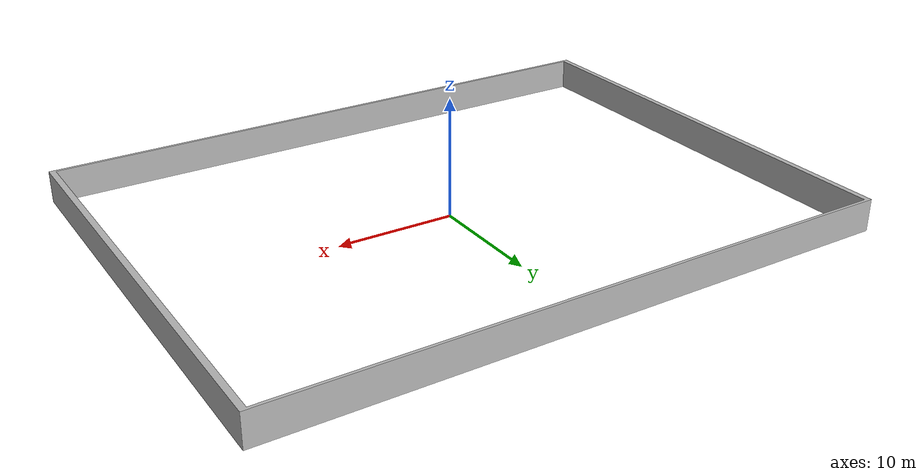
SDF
<?xml version="1.0" ?>
<sdf version="1.6">
  <model name="aws_robomaker_warehouse_WallB_01">
    <link name="link">
      <inertial>
        <mass>1000</mass>
        <inertia>
          <ixx>840083.33</ixx>
          <ixy>0</ixy>
          <ixz>0</ixz>
          <iyy>475500.0</iyy>
          <iyz>0</iyz>
          <izz>1302083.33</izz>
        </inertia>
      </inertial>
      <collision name="collision">
        <geometry>
          <mesh>
            <uri>model://aws_robomaker_warehouse_WallB_01/meshes/aws_robomaker_warehouse_WallB_01_collision.DAE.dae</uri>
            <scale>1 1 1</scale>
          </mesh>
        </geometry>
		<surface>
          <friction>
            <ode>
              <mu>0.5</mu>
              <mu2>0.5</mu2>
              <fdir1>0 0 0</fdir1>
              <slip1>0</slip1>
              <slip2>0</slip2>
            </ode>
        </friction>
          </surface>
      </collision>
      <visual name="visual">
	    <geometry>
          <mesh>
            <uri>model://aws_robomaker_warehouse_WallB_01/meshes/wall_visual.obj</uri>
            <scale>1 1 1</scale>
          </mesh>
        </geometry>
      <meta> <layer> 2 </layer></meta>
</visual>
    </link>
<static>1</static>
  </model>
</sdf>
